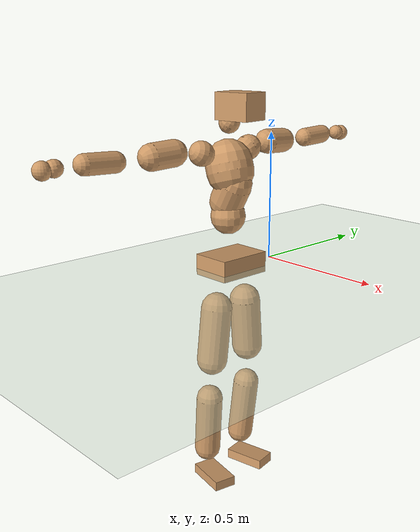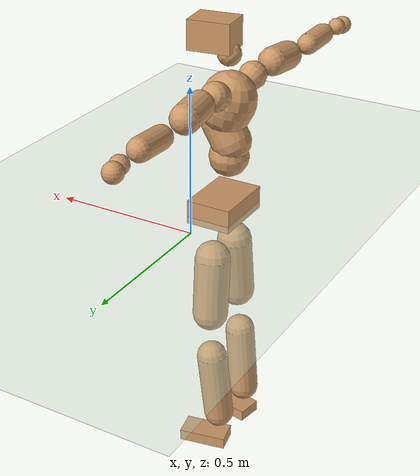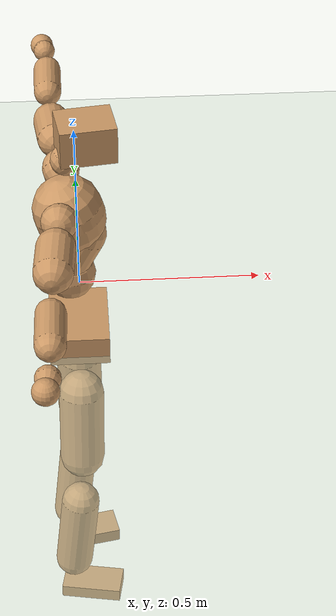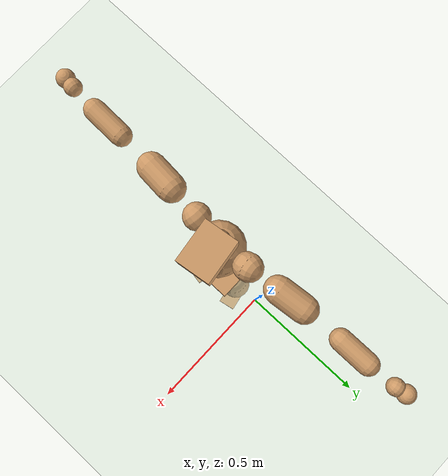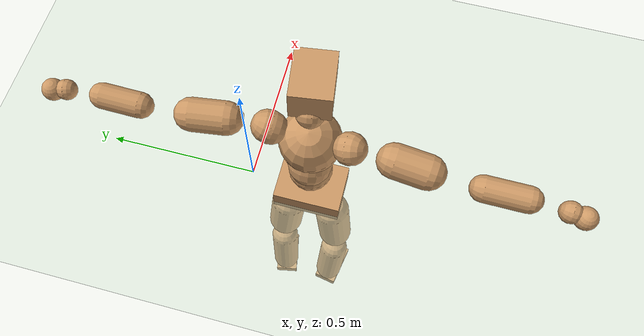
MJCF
<mujoco model="humanoid">
  <compiler coordinate="local" angle="radian"/>
  <default>
    <joint damping="0.0" armature="0.01" stiffness="0.0" limited="true"/>
    <geom conaffinity="1" condim="3" contype="7" margin="0.001" rgba="0.8 0.6 .4 1"/>
  </default>
  <asset>
    <texture type="skybox" builtin="gradient" rgb1=".4 .5 .6" rgb2="0 0 0" width="100" height="100"/>
    <texture builtin="flat" height="1278" mark="cross" markrgb="1 1 1" name="texgeom" random="0.01" rgb1="0.8 0.6 0.4" rgb2="0.8 0.6 0.4" type="cube" width="127"/>
    <texture builtin="checker" height="100" name="texplane" rgb1="0 0 0" rgb2="0.8 0.8 0.8" type="2d" width="100"/>
    <material name="MatPlane" reflectance="0.5" shininess="1" specular="1" texrepeat="60 60" texture="texplane"/>
    <material name="geom" texture="texgeom" texuniform="true"/>
  </asset>
  <worldbody>
    <light cutoff="100" diffuse="1 1 1" dir="-0 0 -1.3" directional="true" exponent="1" pos="0 0 1.3" specular=".1 .1 .1"/>
    <geom conaffinity="1" condim="3" name="floor" pos="0 0 0" rgba="0.8 0.9 0.8 1" size="100 100 .2" type="plane" material="MatPlane"/>
    <body name="Pelvis" pos="0.0004 -0.2064 0.0281">
      <freejoint name="Pelvis"/>
      <geom type="box" contype="1" conaffinity="1" density="5359.375307" pos="-0.0059 -0.0000 -0.0128" size="0.0788 0.11 0.0409" quat="1.0000 0.0000 0.0000 0.0007" name="Pelvis"/>
      <body name="L_Hip" pos="-0.0082 0.0708 -0.0915">
        <joint name="L_Hip_x" type="hinge" pos="0 0 0" axis="1 0 0" stiffness="1600" damping="160" armature="0.02" range="-180.0000 180.0000"/>
        <joint name="L_Hip_y" type="hinge" pos="0 0 0" axis="0 1 0" stiffness="1600" damping="160" armature="0.02" range="-180.0000 180.0000"/>
        <joint name="L_Hip_z" type="hinge" pos="0 0 0" axis="0 0 1" stiffness="1600" damping="160" armature="0.02" range="-180.0000 180.0000"/>
        <geom type="capsule" contype="1" conaffinity="1" density="2040.816327" size="0.0615" fromto="-0.0011 0.0083 -0.0911 -0.0035 0.0270 -0.2979" name="L_Hip"/>
        <body name="L_Knee" pos="-0.0045 0.0352 -0.389">
          <joint name="L_Knee_x" type="hinge" pos="0 0 0" axis="1 0 0" stiffness="1600" damping="160" armature="0.02" range="-180.0000 180.0000"/>
          <joint name="L_Knee_y" type="hinge" pos="0 0 0" axis="0 1 0" stiffness="1600" damping="160" armature="0.02" range="-180.0000 180.0000"/>
          <joint name="L_Knee_z" type="hinge" pos="0 0 0" axis="0 0 1" stiffness="1600" damping="160" armature="0.02" range="-180.0000 180.0000"/>
          <geom type="capsule" contype="1" conaffinity="1" density="1234.567901" size="0.0526" fromto="-0.0089 -0.0023 -0.0821 -0.0353 -0.0093 -0.3260" name="L_Knee"/>
          <body name="L_Ankle" pos="-0.0442 -0.0116 -0.4081">
            <joint name="L_Ankle_x" type="hinge" pos="0 0 0" axis="1 0 0" stiffness="1600" damping="160" armature="0.02" range="-180.0000 180.0000"/>
            <joint name="L_Ankle_y" type="hinge" pos="0 0 0" axis="0 1 0" stiffness="1600" damping="160" armature="0.02" range="-180.0000 180.0000"/>
            <joint name="L_Ankle_z" type="hinge" pos="0 0 0" axis="0 0 1" stiffness="1600" damping="160" armature="0.02" range="-180.0000 180.0000"/>
            <geom type="box" contype="1" conaffinity="1" density="999.999997" pos="0.0587 0.0115 -0.0284" size="0.0838 0.044 0.0204" quat="0.9953 0.0000 0.0000 0.0964" name="L_Ankle"/>
            <body name="L_Toe" pos="0.1175 0.023 -0.0567">
              <joint name="L_Toe_x" type="hinge" pos="0 0 0" axis="1 0 0" stiffness="1000" damping="100" armature="0.02" range="-180.0000 180.0000"/>
              <joint name="L_Toe_y" type="hinge" pos="0 0 0" axis="0 1 0" stiffness="1000" damping="100" armature="0.02" range="-180.0000 180.0000"/>
              <joint name="L_Toe_z" type="hinge" pos="0 0 0" axis="0 0 1" stiffness="1000" damping="100" armature="0.02" range="-180.0000 180.0000"/>
              <geom type="box" contype="1" conaffinity="1" density="8820406.880779" pos="0.0000 0.0000 0.0279" size="0.0009 0.0022 0.001" quat="0.9947 0.0000 0.0000 0.1029" name="L_Toe"/>
            </body>
          </body>
        </body>
      </body>
      <body name="R_Hip" pos="-0.005 -0.0683 -0.0906">
        <joint name="R_Hip_x" type="hinge" pos="0 0 0" axis="1 0 0" stiffness="1600" damping="160" armature="0.02" range="-180.0000 180.0000"/>
        <joint name="R_Hip_y" type="hinge" pos="0 0 0" axis="0 1 0" stiffness="1600" damping="160" armature="0.02" range="-180.0000 180.0000"/>
        <joint name="R_Hip_z" type="hinge" pos="0 0 0" axis="0 0 1" stiffness="1600" damping="160" armature="0.02" range="-180.0000 180.0000"/>
        <geom type="capsule" contype="1" conaffinity="1" density="2040.816327" size="0.0607" fromto="-0.0016 -0.0092 -0.0902 -0.0055 -0.0311 -0.3064" name="R_Hip"/>
        <body name="R_Knee" pos="-0.0071 -0.0403 -0.3966">
          <joint name="R_Knee_x" type="hinge" pos="0 0 0" axis="1 0 0" stiffness="1600" damping="160" armature="0.02" range="-180.0000 180.0000"/>
          <joint name="R_Knee_y" type="hinge" pos="0 0 0" axis="0 1 0" stiffness="1600" damping="160" armature="0.02" range="-180.0000 180.0000"/>
          <joint name="R_Knee_z" type="hinge" pos="0 0 0" axis="0 0 1" stiffness="1600" damping="160" armature="0.02" range="-180.0000 180.0000"/>
          <geom type="capsule" contype="1" conaffinity="1" density="1234.567901" size="0.0529" fromto="-0.0086 0.0030 -0.0824 -0.0339 0.0117 -0.3262" name="R_Knee"/>
          <body name="R_Ankle" pos="-0.0424 0.0147 -0.4086">
            <joint name="R_Ankle_x" type="hinge" pos="0 0 0" axis="1 0 0" stiffness="1600" damping="160" armature="0.02" range="-180.0000 180.0000"/>
            <joint name="R_Ankle_y" type="hinge" pos="0 0 0" axis="0 1 0" stiffness="1600" damping="160" armature="0.02" range="-180.0000 180.0000"/>
            <joint name="R_Ankle_z" type="hinge" pos="0 0 0" axis="0 0 1" stiffness="1600" damping="160" armature="0.02" range="-180.0000 180.0000"/>
            <geom type="box" contype="1" conaffinity="1" density="1000.000037" pos="0.0602 -0.0110 -0.0242" size="0.085 0.045 0.02" quat="0.9959 0.0000 0.0000 -0.0902" name="R_Ankle"/>
            <body name="R_Toe" pos="0.1204 -0.022 -0.0483">
              <joint name="R_Toe_x" type="hinge" pos="0 0 0" axis="1 0 0" stiffness="1000" damping="100" armature="0.02" range="-180.0000 180.0000"/>
              <joint name="R_Toe_y" type="hinge" pos="0 0 0" axis="0 1 0" stiffness="1000" damping="100" armature="0.02" range="-180.0000 180.0000"/>
              <joint name="R_Toe_z" type="hinge" pos="0 0 0" axis="0 0 1" stiffness="1000" damping="100" armature="0.02" range="-180.0000 180.0000"/>
              <geom type="box" contype="1" conaffinity="1" density="8571626.180383" pos="0.0000 0.0000 0.0260" size="0.0008 0.0022 0.0011" quat="0.9967 0.0000 0.0000 -0.0808" name="R_Toe"/>
            </body>
          </body>
        </body>
      </body>
      <body name="Torso" pos="-0.0222 -0.0026 0.1053">
        <joint name="Torso_x" type="hinge" pos="0 0 0" axis="1 0 0" stiffness="2000" damping="200" armature="0.02" range="-180.0000 180.0000"/>
        <joint name="Torso_y" type="hinge" pos="0 0 0" axis="0 1 0" stiffness="2000" damping="200" armature="0.02" range="-180.0000 180.0000"/>
        <joint name="Torso_z" type="hinge" pos="0 0 0" axis="0 0 1" stiffness="2000" damping="200" armature="0.02" range="-180.0000 180.0000"/>
        <geom type="capsule" contype="1" conaffinity="1" density="2040.816327" size="0.0675" fromto="-0.0013 0.0016 0.0675 -0.0012 0.0015 0.0635" name="Torso"/>
        <body name="Spine" pos="-0.0026 0.0031 0.131">
          <joint name="Spine_x" type="hinge" pos="0 0 0" axis="1 0 0" stiffness="2000" damping="200" armature="0.02" range="-180.0000 180.0000"/>
          <joint name="Spine_y" type="hinge" pos="0 0 0" axis="0 1 0" stiffness="2000" damping="200" armature="0.02" range="-180.0000 180.0000"/>
          <joint name="Spine_z" type="hinge" pos="0 0 0" axis="0 0 1" stiffness="2000" damping="200" armature="0.02" range="-180.0000 180.0000"/>
          <geom type="capsule" contype="1" conaffinity="1" density="2040.816327" size="0.0677" fromto="0.0324 0.0024 0.0594 -0.0060 -0.0004 -0.0109" name="Spine"/>
          <body name="Chest" pos="0.0264 0.0019 0.0484">
            <joint name="Chest_x" type="hinge" pos="0 0 0" axis="1 0 0" stiffness="2000" damping="200" armature="0.02" range="-180.0000 180.0000"/>
            <joint name="Chest_y" type="hinge" pos="0 0 0" axis="0 1 0" stiffness="2000" damping="200" armature="0.02" range="-180.0000 180.0000"/>
            <joint name="Chest_z" type="hinge" pos="0 0 0" axis="0 0 1" stiffness="2000" damping="200" armature="0.02" range="-180.0000 180.0000"/>
            <geom type="capsule" contype="1" conaffinity="1" density="2040.816327" size="0.0909" fromto="-0.0251 -0.0006 0.0873 -0.0168 -0.0004 0.0585" name="Chest"/>
            <body name="Neck" pos="-0.0484 -0.0013 0.2059">
              <joint name="Neck_x" type="hinge" pos="0 0 0" axis="1 0 0" stiffness="1000" damping="100" armature="0.02" range="-180.0000 180.0000"/>
              <joint name="Neck_y" type="hinge" pos="0 0 0" axis="0 1 0" stiffness="1000" damping="100" armature="0.02" range="-180.0000 180.0000"/>
              <joint name="Neck_z" type="hinge" pos="0 0 0" axis="0 0 1" stiffness="1000" damping="100" armature="0.02" range="-180.0000 180.0000"/>
              <geom type="capsule" contype="1" conaffinity="1" density="1000" size="0.0395" fromto="0.0239 0.0024 0.0295 0.0252 0.0026 0.0310" name="Neck"/>
              <body name="Head" pos="0.0491 0.005 0.0605">
                <joint name="Head_x" type="hinge" pos="0 0 0" axis="1 0 0" stiffness="1000" damping="100" armature="0.02" range="-180.0000 180.0000"/>
                <joint name="Head_y" type="hinge" pos="0 0 0" axis="0 1 0" stiffness="1000" damping="100" armature="0.02" range="-180.0000 180.0000"/>
                <joint name="Head_z" type="hinge" pos="0 0 0" axis="0 0 1" stiffness="1000" damping="100" armature="0.02" range="-180.0000 180.0000"/>
                <geom type="box" contype="1" conaffinity="1" density="2249.999981" pos="0.0255 0.0035 0.0312" size="0.0718 0.0566 0.0498" quat="0.9977 0.0000 0.0000 0.0680" name="Head"/>
              </body>
            </body>
            <body name="L_Thorax" pos="-0.0358 0.0723 0.1168">
              <joint name="L_Thorax_x" type="hinge" pos="0 0 0" axis="1 0 0" stiffness="1000" damping="100" armature="0.02" range="-180.0000 180.0000"/>
              <joint name="L_Thorax_y" type="hinge" pos="0 0 0" axis="0 1 0" stiffness="1000" damping="100" armature="0.02" range="-180.0000 180.0000"/>
              <joint name="L_Thorax_z" type="hinge" pos="0 0 0" axis="0 0 1" stiffness="1000" damping="100" armature="0.02" range="-180.0000 180.0000"/>
              <geom type="capsule" contype="1" conaffinity="1" density="1000" size="0.0478" fromto="-0.0027 0.0440 0.0184 -0.0022 0.0354 0.0148" name="L_Thorax"/>
              <body name="L_Shoulder" pos="-0.0049 0.0794 0.0332">
                <joint name="L_Shoulder_x" type="hinge" pos="0 0 0" axis="1 0 0" stiffness="1000" damping="100" armature="0.02" range="-720.0000 720.0000"/>
                <joint name="L_Shoulder_y" type="hinge" pos="0 0 0" axis="0 1 0" stiffness="1000" damping="100" armature="0.02" range="-720.0000 720.0000"/>
                <joint name="L_Shoulder_z" type="hinge" pos="0 0 0" axis="0 0 1" stiffness="1000" damping="100" armature="0.02" range="-720.0000 720.0000"/>
                <geom type="capsule" contype="1" conaffinity="1" density="1000" size="0.048" fromto="-0.0082 0.0774 -0.0041 -0.0189 0.1771 -0.0095" name="L_Shoulder"/>
                <body name="L_Elbow" pos="-0.0271 0.2545 -0.0136">
                  <joint name="L_Elbow_x" type="hinge" pos="0 0 0" axis="1 0 0" stiffness="1000" damping="100" armature="0.02" range="-720.0000 720.0000"/>
                  <joint name="L_Elbow_y" type="hinge" pos="0 0 0" axis="0 1 0" stiffness="1000" damping="100" armature="0.02" range="-720.0000 720.0000"/>
                  <joint name="L_Elbow_z" type="hinge" pos="0 0 0" axis="0 0 1" stiffness="1000" damping="100" armature="0.02" range="-720.0000 720.0000"/>
                  <geom type="capsule" contype="1" conaffinity="1" density="1000" size="0.0371" fromto="-0.0002 0.0671 0.0028 -0.0005 0.1769 0.0074" name="L_Elbow"/>
                  <body name="L_Wrist" pos="-0.0006 0.244 0.0103">
                    <joint name="L_Wrist_x" type="hinge" pos="0 0 0" axis="1 0 0" stiffness="600" damping="60" armature="0.02" range="-180.0000 180.0000"/>
                    <joint name="L_Wrist_y" type="hinge" pos="0 0 0" axis="0 1 0" stiffness="600" damping="60" armature="0.02" range="-180.0000 180.0000"/>
                    <joint name="L_Wrist_z" type="hinge" pos="0 0 0" axis="0 0 1" stiffness="600" damping="60" armature="0.02" range="-180.0000 180.0000"/>
                    <geom type="capsule" contype="1" conaffinity="1" density="1000" size="0.0294" fromto="-0.0065 0.0381 -0.0047 -0.0068 0.0401 -0.0049" name="L_Wrist"/>
                    <body name="L_Hand" pos="-0.0133 0.0782 -0.0096">
                      <joint name="L_Hand_x" type="hinge" pos="0 0 0" axis="1 0 0" stiffness="600" damping="60" armature="0.02" range="-180.0000 180.0000"/>
                      <joint name="L_Hand_y" type="hinge" pos="0 0 0" axis="0 1 0" stiffness="600" damping="60" armature="0.02" range="-180.0000 180.0000"/>
                      <joint name="L_Hand_z" type="hinge" pos="0 0 0" axis="0 0 1" stiffness="600" damping="60" armature="0.02" range="-180.0000 180.0000"/>
                      <geom type="sphere" contype="1" conaffinity="1" density="1000" size="0.0316" pos="0.0000 0.0000 0.0000" name="L_Hand"/>
                    </body>
                  </body>
                </body>
              </body>
            </body>
            <body name="R_Thorax" pos="-0.0416 -0.0741 0.1146">
              <joint name="R_Thorax_x" type="hinge" pos="0 0 0" axis="1 0 0" stiffness="1000" damping="100" armature="0.02" range="-180.0000 180.0000"/>
              <joint name="R_Thorax_y" type="hinge" pos="0 0 0" axis="0 1 0" stiffness="1000" damping="100" armature="0.02" range="-180.0000 180.0000"/>
              <joint name="R_Thorax_z" type="hinge" pos="0 0 0" axis="0 0 1" stiffness="1000" damping="100" armature="0.02" range="-180.0000 180.0000"/>
              <geom type="capsule" contype="1" conaffinity="1" density="1000" size="0.0472" fromto="-0.0042 -0.0436 0.0175 -0.0040 -0.0415 0.0167" name="R_Thorax"/>
              <body name="R_Shoulder" pos="-0.0081 -0.0851 0.0342">
                <joint name="R_Shoulder_x" type="hinge" pos="0 0 0" axis="1 0 0" stiffness="1000" damping="100" armature="0.02" range="-720.0000 720.0000"/>
                <joint name="R_Shoulder_y" type="hinge" pos="0 0 0" axis="0 1 0" stiffness="1000" damping="100" armature="0.02" range="-720.0000 720.0000"/>
                <joint name="R_Shoulder_z" type="hinge" pos="0 0 0" axis="0 0 1" stiffness="1000" damping="100" armature="0.02" range="-720.0000 720.0000"/>
                <geom type="capsule" contype="1" conaffinity="1" density="1000" size="0.0494" fromto="-0.0063 -0.0790 -0.0046 -0.0139 -0.1729 -0.0100" name="R_Shoulder"/>
                <body name="R_Elbow" pos="-0.0202 -0.2519 -0.0145">
                  <joint name="R_Elbow_x" type="hinge" pos="0 0 0" axis="1 0 0" stiffness="1000" damping="100" armature="0.02" range="-720.0000 720.0000"/>
                  <joint name="R_Elbow_y" type="hinge" pos="0 0 0" axis="0 1 0" stiffness="1000" damping="100" armature="0.02" range="-720.0000 720.0000"/>
                  <joint name="R_Elbow_z" type="hinge" pos="0 0 0" axis="0 0 1" stiffness="1000" damping="100" armature="0.02" range="-720.0000 720.0000"/>
                  <geom type="capsule" contype="1" conaffinity="1" density="1000" size="0.0373" fromto="-0.0014 -0.0673 0.0024 -0.0038 -0.1868 0.0067" name="R_Elbow"/>
                  <body name="R_Wrist" pos="-0.0052 -0.2541 0.0091">
                    <joint name="R_Wrist_x" type="hinge" pos="0 0 0" axis="1 0 0" stiffness="600" damping="60" armature="0.02" range="-180.0000 180.0000"/>
                    <joint name="R_Wrist_y" type="hinge" pos="0 0 0" axis="0 1 0" stiffness="600" damping="60" armature="0.02" range="-180.0000 180.0000"/>
                    <joint name="R_Wrist_z" type="hinge" pos="0 0 0" axis="0 0 1" stiffness="600" damping="60" armature="0.02" range="-180.0000 180.0000"/>
                    <geom type="capsule" contype="1" conaffinity="1" density="1000" size="0.0304" fromto="-0.0051 -0.0390 -0.0035 -0.0053 -0.0410 -0.0036" name="R_Wrist"/>
                    <body name="R_Hand" pos="-0.0104 -0.0799 -0.0071">
                      <joint name="R_Hand_x" type="hinge" pos="0 0 0" axis="1 0 0" stiffness="600" damping="60" armature="0.02" range="-180.0000 180.0000"/>
                      <joint name="R_Hand_y" type="hinge" pos="0 0 0" axis="0 1 0" stiffness="600" damping="60" armature="0.02" range="-180.0000 180.0000"/>
                      <joint name="R_Hand_z" type="hinge" pos="0 0 0" axis="0 0 1" stiffness="600" damping="60" armature="0.02" range="-180.0000 180.0000"/>
                      <geom type="sphere" contype="1" conaffinity="1" density="1000" size="0.0321" pos="0.0000 0.0000 0.0000" name="R_Hand"/>
                    </body>
                  </body>
                </body>
              </body>
            </body>
          </body>
        </body>
      </body>
    </body>
  </worldbody>
  <actuator>
    <motor name="L_Hip_x" joint="L_Hip_x" gear="500"/>
    <motor name="L_Hip_y" joint="L_Hip_y" gear="500"/>
    <motor name="L_Hip_z" joint="L_Hip_z" gear="500"/>
    <motor name="L_Knee_x" joint="L_Knee_x" gear="500"/>
    <motor name="L_Knee_y" joint="L_Knee_y" gear="500"/>
    <motor name="L_Knee_z" joint="L_Knee_z" gear="500"/>
    <motor name="L_Ankle_x" joint="L_Ankle_x" gear="500"/>
    <motor name="L_Ankle_y" joint="L_Ankle_y" gear="500"/>
    <motor name="L_Ankle_z" joint="L_Ankle_z" gear="500"/>
    <motor name="L_Toe_x" joint="L_Toe_x" gear="500"/>
    <motor name="L_Toe_y" joint="L_Toe_y" gear="500"/>
    <motor name="L_Toe_z" joint="L_Toe_z" gear="500"/>
    <motor name="R_Hip_x" joint="R_Hip_x" gear="500"/>
    <motor name="R_Hip_y" joint="R_Hip_y" gear="500"/>
    <motor name="R_Hip_z" joint="R_Hip_z" gear="500"/>
    <motor name="R_Knee_x" joint="R_Knee_x" gear="500"/>
    <motor name="R_Knee_y" joint="R_Knee_y" gear="500"/>
    <motor name="R_Knee_z" joint="R_Knee_z" gear="500"/>
    <motor name="R_Ankle_x" joint="R_Ankle_x" gear="500"/>
    <motor name="R_Ankle_y" joint="R_Ankle_y" gear="500"/>
    <motor name="R_Ankle_z" joint="R_Ankle_z" gear="500"/>
    <motor name="R_Toe_x" joint="R_Toe_x" gear="500"/>
    <motor name="R_Toe_y" joint="R_Toe_y" gear="500"/>
    <motor name="R_Toe_z" joint="R_Toe_z" gear="500"/>
    <motor name="Torso_x" joint="Torso_x" gear="500"/>
    <motor name="Torso_y" joint="Torso_y" gear="500"/>
    <motor name="Torso_z" joint="Torso_z" gear="500"/>
    <motor name="Spine_x" joint="Spine_x" gear="500"/>
    <motor name="Spine_y" joint="Spine_y" gear="500"/>
    <motor name="Spine_z" joint="Spine_z" gear="500"/>
    <motor name="Chest_x" joint="Chest_x" gear="500"/>
    <motor name="Chest_y" joint="Chest_y" gear="500"/>
    <motor name="Chest_z" joint="Chest_z" gear="500"/>
    <motor name="Neck_x" joint="Neck_x" gear="500"/>
    <motor name="Neck_y" joint="Neck_y" gear="500"/>
    <motor name="Neck_z" joint="Neck_z" gear="500"/>
    <motor name="Head_x" joint="Head_x" gear="500"/>
    <motor name="Head_y" joint="Head_y" gear="500"/>
    <motor name="Head_z" joint="Head_z" gear="500"/>
    <motor name="L_Thorax_x" joint="L_Thorax_x" gear="500"/>
    <motor name="L_Thorax_y" joint="L_Thorax_y" gear="500"/>
    <motor name="L_Thorax_z" joint="L_Thorax_z" gear="500"/>
    <motor name="L_Shoulder_x" joint="L_Shoulder_x" gear="500"/>
    <motor name="L_Shoulder_y" joint="L_Shoulder_y" gear="500"/>
    <motor name="L_Shoulder_z" joint="L_Shoulder_z" gear="500"/>
    <motor name="L_Elbow_x" joint="L_Elbow_x" gear="500"/>
    <motor name="L_Elbow_y" joint="L_Elbow_y" gear="500"/>
    <motor name="L_Elbow_z" joint="L_Elbow_z" gear="500"/>
    <motor name="L_Wrist_x" joint="L_Wrist_x" gear="500"/>
    <motor name="L_Wrist_y" joint="L_Wrist_y" gear="500"/>
    <motor name="L_Wrist_z" joint="L_Wrist_z" gear="500"/>
    <motor name="L_Hand_x" joint="L_Hand_x" gear="500"/>
    <motor name="L_Hand_y" joint="L_Hand_y" gear="500"/>
    <motor name="L_Hand_z" joint="L_Hand_z" gear="500"/>
    <motor name="R_Thorax_x" joint="R_Thorax_x" gear="500"/>
    <motor name="R_Thorax_y" joint="R_Thorax_y" gear="500"/>
    <motor name="R_Thorax_z" joint="R_Thorax_z" gear="500"/>
    <motor name="R_Shoulder_x" joint="R_Shoulder_x" gear="500"/>
    <motor name="R_Shoulder_y" joint="R_Shoulder_y" gear="500"/>
    <motor name="R_Shoulder_z" joint="R_Shoulder_z" gear="500"/>
    <motor name="R_Elbow_x" joint="R_Elbow_x" gear="500"/>
    <motor name="R_Elbow_y" joint="R_Elbow_y" gear="500"/>
    <motor name="R_Elbow_z" joint="R_Elbow_z" gear="500"/>
    <motor name="R_Wrist_x" joint="R_Wrist_x" gear="500"/>
    <motor name="R_Wrist_y" joint="R_Wrist_y" gear="500"/>
    <motor name="R_Wrist_z" joint="R_Wrist_z" gear="500"/>
    <motor name="R_Hand_x" joint="R_Hand_x" gear="500"/>
    <motor name="R_Hand_y" joint="R_Hand_y" gear="500"/>
    <motor name="R_Hand_z" joint="R_Hand_z" gear="500"/>
  </actuator>
  <contact>
    <exclude body1="Torso" body2="Chest"/>
    <exclude body1="Head" body2="Chest"/>
    <exclude body1="R_Knee" body2="R_Toe"/>
    <exclude body1="R_Knee" body2="L_Ankle"/>
    <exclude body1="R_Knee" body2="L_Toe"/>
    <exclude body1="L_Knee" body2="L_Toe"/>
    <exclude body1="L_Knee" body2="R_Ankle"/>
    <exclude body1="L_Knee" body2="R_Toe"/>
    <exclude body1="L_Shoulder" body2="Chest"/>
    <exclude body1="R_Shoulder" body2="Chest"/>
  </contact>
  <sensor/>
  <size njmax="700" nconmax="700"/>
</mujoco>
